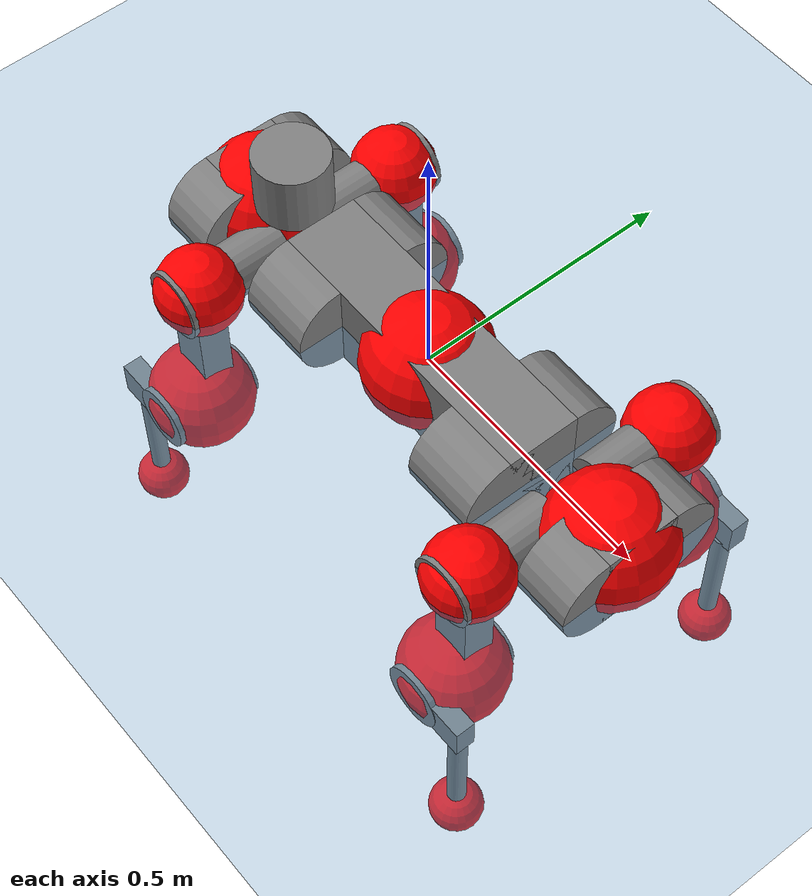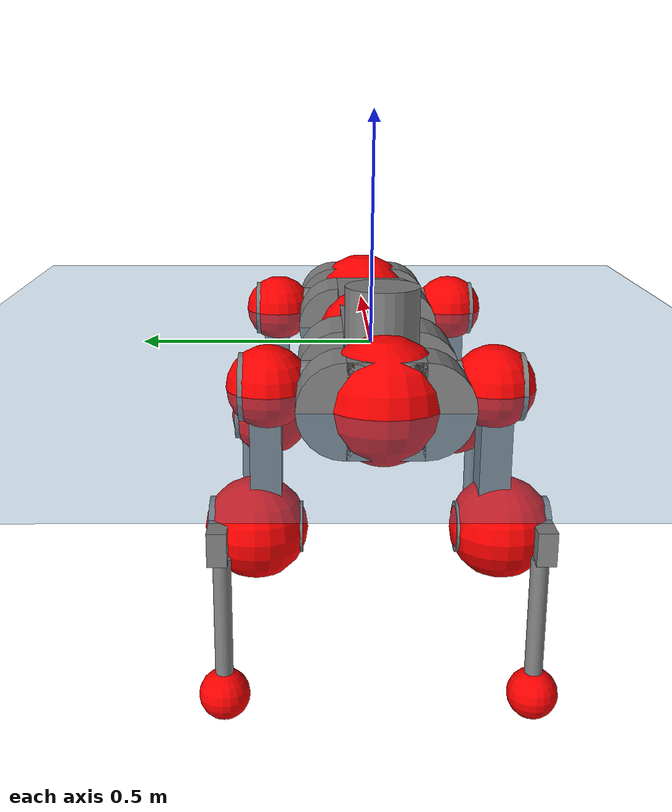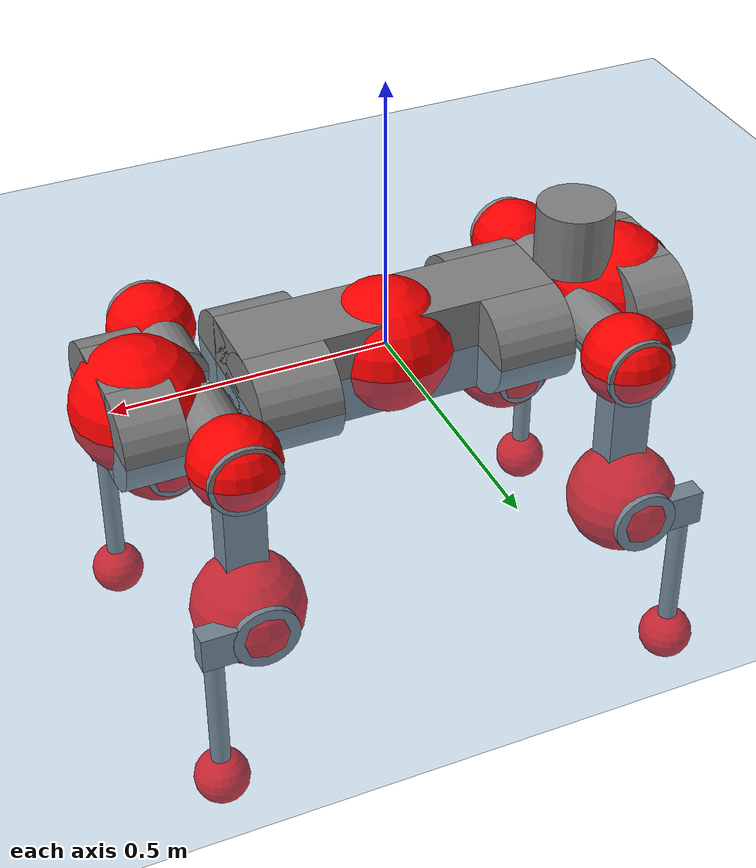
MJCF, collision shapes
<mujoco model="anymal_c">
  <compiler angle="radian" assetdir="assets" balanceinertia="true" inertiafromgeom="false"/>

  <option timestep="0.005" density="1.2" viscosity="2e-05"/>

  <size nkey="1"/>

  <visual>
    <quality shadowsize="8192"/>
    <map shadowclip="0.5"/>
  </visual>

  <default>
    <default class="/">
      <material specular="0" shininess="0.25"/>
      <geom contype="0" conaffinity="0" group="1" solref="-1000 -80"/>
      <site size="0.01 0.005 0.005" group="5"/>
      <general forcelimited="true" forcerange="-80 80" biastype="affine" gainprm="80" biasprm="0 -80 -2"/>
      <default class="anymal_c">
        <joint armature="0.01" damping="0.01" frictionloss="0.1"/>
        <default class="visual">
          <geom type="mesh" group="2"/>
          <default class="visual_zflip"/>
        </default>
        <default class="collision">
          <geom type="cylinder" group="3"/>
          <default class="foot">
            <geom size="0.03 0 0" type="sphere" condim="6" priority="1" friction="0.8 0.02 0.01" solimp="0.015 1 0.03"/>
          </default>
        </default>
      </default>
      <default class="reward_collision_sphere">
        <geom group="5" rgba="1 0 0 1"/>
      </default>
    </default>
  </default>

  <asset>
    <texture type="skybox" colorspace="auto" name="//unnamed_texture_0" builtin="gradient" rgb1="0.95 0.95 0.95" rgb2="0.95 0.95 0.95" width="100" height="600"/>
    <texture type="2d" colorspace="auto" name="texplane" builtin="checker" rgb1="0.345 0.575 0.748" rgb2="0.345 0.575 0.748" markrgb="1 1 1" width="512" height="512"/>
    <texture type="2d" colorspace="linear" name="base" file="base.png"/>
    <texture type="2d" colorspace="linear" name="top_shell" file="top_shell.png"/>
    <texture type="2d" colorspace="linear" name="bottom_shell" file="bottom_shell.png"/>
    <texture type="2d" colorspace="linear" name="remote" file="remote.png"/>
    <texture type="2d" colorspace="linear" name="hatch" file="hatch.png"/>
    <texture type="2d" colorspace="linear" name="handle" file="handle.png"/>
    <texture type="2d" colorspace="linear" name="face" file="face.png"/>
    <texture type="2d" colorspace="linear" name="battery" file="battery.png"/>
    <texture type="2d" colorspace="linear" name="lidar_cage" file="lidar_cage.png"/>
    <texture type="2d" colorspace="linear" name="depth_camera" file="depth_camera.png"/>
    <texture type="2d" colorspace="linear" name="wide_angle_camera" file="wide_angle_camera.png"/>
    <texture type="2d" colorspace="linear" name="lidar" file="lidar.png"/>
    <texture type="2d" colorspace="linear" name="drive" file="drive.png"/>
    <texture type="2d" colorspace="linear" name="hip_l" file="hip_l.png"/>
    <texture type="2d" colorspace="linear" name="shank_l" file="shank_l.png"/>
    <texture type="2d" colorspace="linear" name="foot" file="foot.png"/>
    <texture type="2d" colorspace="linear" name="thigh" file="thigh.png"/>
    <texture type="2d" colorspace="linear" name="shank_r" file="shank_r.png"/>
    <texture type="2d" colorspace="linear" name="hip_r" file="hip_r.png"/>
    <material name="MatPlane" class="/" texture="texplane" texuniform="true" texrepeat="2 2" specular="0.9" shininess="0.5"/>
    <material name="black_plastic" class="/" rgba="0.007 0.007 0.007 1"/>
    <material name="green" class="/" rgba="0.052 0.178 0.033 1"/>
    <material name="red" class="/" rgba="0.178 0.006 0.005 1"/>
    <material name="yellow" class="/" rgba="0.178 0.119 0.006 1"/>
    <material name="lwl" class="/" rgba="0.8 0.8 0.8 1"/>
    <material name="base" class="/" texture="base"/>
    <material name="top_shell" class="/" texture="top_shell"/>
    <material name="bottom_shell" class="/" texture="bottom_shell"/>
    <material name="hip_l" class="/" texture="hip_l"/>
    <material name="thigh" class="/" texture="thigh"/>
    <material name="shank_l" class="/" texture="shank_l"/>
    <material name="foot" class="/" texture="foot"/>
    <material name="hip_r" class="/" texture="hip_r"/>
    <material name="shank" class="/" texture="shank_r"/>
    <material name="hatch" class="/" texture="hatch"/>
    <material name="remote" class="/" texture="remote"/>
    <material name="handle" class="/" texture="handle"/>
    <material name="face" class="/" texture="face"/>
    <material name="depth_camera" class="/" texture="depth_camera"/>
    <material name="wide_angle_camera" class="/" texture="wide_angle_camera"/>
    <material name="battery" class="/" texture="battery"/>
    <material name="lidar_cage" class="/" texture="lidar_cage"/>
    <material name="lidar" class="/" texture="lidar"/>
    <material name="drive" class="/" texture="drive"/>
    <mesh name="base_0" class="/" file="base_0.obj"/>
    <mesh name="base_1" class="/" file="base_1.obj"/>
    <mesh name="base_2" class="/" file="base_2.obj"/>
    <mesh name="base_3" class="/" file="base_3.obj"/>
    <mesh name="base_4" class="/" file="base_4.obj"/>
    <mesh name="base_5" class="/" file="base_5.obj"/>
    <mesh name="top_shell" class="/" file="top_shell.obj"/>
    <mesh name="bottom_shell" class="/" file="bottom_shell.obj"/>
    <mesh name="remote" class="/" file="remote.obj"/>
    <mesh name="handle" class="/" file="handle.obj"/>
    <mesh name="face" class="/" file="face.obj"/>
    <mesh name="wide_angle_camera" class="/" file="wide_angle_camera.obj"/>
    <mesh name="depth_camera" class="/" file="depth_camera.obj"/>
    <mesh name="battery" class="/" file="battery.obj"/>
    <mesh name="lidar_cage" class="/" file="lidar_cage.obj"/>
    <mesh name="lidar" class="/" file="lidar.obj"/>
    <mesh name="drive" class="/" file="drive.obj"/>
    <mesh name="hip_l" class="/" file="hip_l.obj"/>
    <mesh name="thigh" class="/" file="thigh.obj"/>
    <mesh name="shank_l" class="/" file="shank_l.obj"/>
    <mesh name="foot" class="/" file="foot.obj"/>
    <mesh name="hip_r" class="/" file="hip_r.obj"/>
    <mesh name="hatch" class="/" file="hatch.obj"/>
    <mesh name="shank_r" class="/" file="shank_r.obj"/>
  </asset>

  <worldbody>
    <geom name="floor" class="/" size="100 100 0.125" type="plane" group="0" material="MatPlane"/>
    <light name="toplight_shadow" class="/" pos="0 0 5" dir="0.0990148 0.0990148 -0.990148" type="directional" ambient="0.04 0.04 0.04" diffuse="0.55 0.55 0.55" specular="0.12 0.12 0.12"/>
    <light name="toplight_fill" class="/" pos="0 0 5" dir="0.0990148 0.0990148 -0.990148" type="directional" castshadow="false" ambient="0.04 0.04 0.04" diffuse="0.3 0.3 0.3" specular="0.08 0.08 0.08"/>
    <body name="trunk" childclass="anymal_c">
      <inertial pos="0.0025 0 0.0502071" quat="0.5 0.5 0.5 0.5" mass="19.2035" diaginertia="0.639559 0.624031 0.217374"/>
      <joint name="//unnamed_joint_0" type="free" armature="0" damping="0" frictionloss="0"/>
      <geom name="//unnamed_geom_1" class="visual" material="green" mesh="base_0"/>
      <geom name="//unnamed_geom_2" class="visual" material="yellow" mesh="base_1"/>
      <geom name="//unnamed_geom_3" class="visual" material="red" mesh="base_2"/>
      <geom name="//unnamed_geom_4" class="visual" material="black_plastic" mesh="base_3"/>
      <geom name="//unnamed_geom_5" class="visual" material="lwl" mesh="base_4"/>
      <geom name="//unnamed_geom_6" class="visual" material="base" mesh="base_5"/>
      <geom name="trunk_1" class="collision" size="0.29 0.07 0.09" type="box"/>
      <geom name="trunk_2" class="collision" size="0.09 0.0725" pos="0.2175 0.07 0" quat="0.707107 0 0.707107 0"/>
      <geom name="trunk_3" class="collision" size="0.09 0.0725" pos="-0.2175 0.07 0" quat="0.707107 0 0.707107 0"/>
      <geom name="trunk_4" class="collision" size="0.09 0.0725" pos="0.2175 -0.07 0" quat="0.707107 0 0.707107 0"/>
      <geom name="trunk_5" class="collision" size="0.09 0.0725" pos="-0.2175 -0.07 0" quat="0.707107 0 0.707107 0"/>
      <geom name="//unnamed_geom_12" class="visual" material="top_shell" mesh="top_shell"/>
      <geom name="//unnamed_geom_13" class="visual" material="bottom_shell" mesh="bottom_shell"/>
      <geom name="//unnamed_geom_14" class="visual" material="remote" mesh="remote"/>
      <geom name="//unnamed_geom_15" class="visual" material="handle" mesh="handle"/>
      <geom name="//unnamed_geom_16" class="visual" pos="0.4145 0 0" quat="1 0 0 0" material="face" mesh="face"/>
      <geom name="trunk_6" class="collision" size="0.055 0.07 0.09" pos="0.4695 0 0" type="box"/>
      <geom name="//unnamed_geom_18" class="collision" size="0.09 0.055" pos="0.4695 0.07 0" quat="0.707107 0 0.707107 0"/>
      <geom name="//unnamed_geom_19" class="collision" size="0.09 0.055" pos="0.4695 -0.07 0" quat="0.707107 0 0.707107 0"/>
      <geom name="//unnamed_geom_20" class="visual" pos="0.46165 0 -0.0292" quat="0.965926 0 0.258819 0" material="depth_camera" mesh="depth_camera"/>
      <geom name="//unnamed_geom_21" class="visual" pos="0.513 0 0.01497" material="wide_angle_camera" mesh="wide_angle_camera"/>
      <geom name="//unnamed_geom_22" class="visual_zflip" pos="-0.4145 0 0" quat="0 0 0 1" material="face" mesh="face"/>
      <geom name="trunk_7" class="collision" size="0.055 0.07 0.09" pos="-0.4695 0 0" quat="0 0 0 1" type="box"/>
      <geom name="//unnamed_geom_24" class="collision" size="0.09 0.055" pos="-0.4695 -0.07 0" quat="0 -0.707107 0 0.707107"/>
      <geom name="//unnamed_geom_25" class="collision" size="0.09 0.055" pos="-0.4695 0.07 0" quat="0 -0.707107 0 0.707107"/>
      <geom name="//unnamed_geom_26" class="visual" pos="-0.46165 0 -0.0292" quat="0 -0.258819 0 0.965926" material="depth_camera" mesh="depth_camera"/>
      <geom name="//unnamed_geom_27" class="visual_zflip" pos="-0.513 0 0.01497" quat="0 0 0 1" material="wide_angle_camera" mesh="wide_angle_camera"/>
      <geom name="//unnamed_geom_28" class="visual" material="battery" mesh="battery"/>
      <geom name="//unnamed_geom_29" class="visual" pos="0 0.07646 0.02905" quat="0.683013 -0.183013 0.183013 0.683013" material="depth_camera" mesh="depth_camera"/>
      <geom name="//unnamed_geom_30" class="visual" pos="0 -0.07646 0.02905" quat="0.683013 0.183013 0.183013 -0.683013" material="depth_camera" mesh="depth_camera"/>
      <geom name="//unnamed_geom_31" class="visual" pos="-0.364 0 0.0735" quat="1 0 0 0" material="lidar_cage" mesh="lidar_cage"/>
      <geom name="trunk_8" class="collision" size="0.07 0.06" pos="-0.364 0 0.1335"/>
      <geom name="//unnamed_geom_33" class="visual" pos="-0.364 0 0.1422" quat="0.707107 0 0 -0.707107" material="lidar" mesh="lidar"/>
      <geom name="//unnamed_geom_34" class="visual" pos="0.2999 0.104 0" quat="0.258819 0.965926 0 0" material="drive" mesh="drive"/>
      <geom name="//unnamed_geom_35" class="visual" pos="0.2999 -0.104 0" quat="0.258819 -0.965926 0 0" material="drive" mesh="drive"/>
      <geom name="//unnamed_geom_36" class="visual" pos="-0.2999 0.104 0" quat="0 0 0.965926 -0.258819" material="drive" mesh="drive"/>
      <geom name="//unnamed_geom_37" class="visual" pos="-0.2999 -0.104 0" quat="0 0 -0.965926 -0.258819" material="drive" mesh="drive"/>
      <geom name="//unnamed_geom_38" class="visual" pos="0.116 0 0.073" quat="1 0 0 0" material="hatch" mesh="hatch"/>
      <geom name="//unnamed_geom_39" class="reward_collision_sphere" size="0.12"/>
      <geom name="//unnamed_geom_40" class="reward_collision_sphere" size="0.12" pos="0.45 0 0"/>
      <geom name="//unnamed_geom_41" class="reward_collision_sphere" size="0.12" pos="-0.45 0 0"/>
      <site name="imu" pos="0.2488 0.00835 0.04628"/>
      <camera name="track" pos="0 -2 0" quat="0.707107 0.707107 0 0" mode="trackcom"/>
      <camera name="ego_camera" pos="0.45 0 -0.04" quat="-0.5 -0.5 0.5 0.5"/>
      <body name="LF_HIP" pos="0.2999 0.104 0" quat="0.258819 0.965926 0 0">
        <inertial pos="0.0566606 -0.015294 -0.00829784" quat="-0.127978 0.709783 -0.135278 0.679359" mass="2.781" diaginertia="0.00585729 0.00491868 0.00329081"/>
        <joint name="LF_HAA" pos="0 0 0" axis="1 0 0" range="-0.72 0.49"/>
        <geom name="//unnamed_geom_42" class="visual" pos="0 0 0" quat="0.258819 -0.965926 0 0" material="hip_l" mesh="hip_l"/>
        <geom name="//unnamed_geom_43" class="visual" pos="0.0599 -0.0725816 -0.041905" quat="0.183013 -0.683013 0.683013 0.183013" material="drive" mesh="drive"/>
        <geom name="//unnamed_geom_44" class="collision" size="0.05 0.07" pos="0.0599 -0.0119598 -0.006905" quat="-0.353553 -0.612372 0.612372 -0.353553"/>
        <body name="LF_THIGH" pos="0.0599 -0.0725816 -0.041905" quat="0.183013 -0.683013 0.683013 0.183013">
          <inertial pos="0.0308147 4.64995e-05 -0.245696" quat="0.993166 -0.00515309 -0.0806592 0.0841972" mass="3.071" diaginertia="0.03025 0.0298943 0.00418465"/>
          <joint name="LF_HFE" pos="0 0 0" axis="1 0 0" range="-3.14 3.14"/>
          <geom name="//unnamed_geom_45" class="visual" pos="0 0 0" quat="0.707107 0 0 -0.707107" material="thigh" mesh="thigh"/>
          <geom name="//unnamed_geom_46" class="collision" size="0.065 0.04" pos="0.04 0 0" quat="0.5 0.5 -0.5 -0.5"/>
          <geom name="//unnamed_geom_47" class="collision" size="0.0375 0.03 0.141314" pos="0.03 0 -0.141314" quat="0.707107 0 0 -0.707107" type="box"/>
          <geom name="//unnamed_geom_48" class="visual" pos="0.1003 0 -0.285" quat="1 0 0 0" material="drive" mesh="drive"/>
          <geom name="//unnamed_geom_49" class="collision" size="0.05 0.07" pos="0.0303 0 -0.285" quat="0.707107 0 0.707107 0"/>
          <geom name="//unnamed_geom_50" class="reward_collision_sphere" size="0.08" pos="0.025 0 0"/>
          <body name="LF_SHANK" pos="0.1003 0 -0.285">
            <inertial pos="0.005462 -0.0612528 -0.0806598" quat="0.992934 -0.115904 -0.00105487 -0.0254421" mass="0.58842" diaginertia="0.0101637 0.00923838 0.00111927"/>
            <joint name="LF_KFE" pos="0 0 0" axis="1 0 0" range="-3.14 3.14"/>
            <geom name="//unnamed_geom_51" class="visual" quat="0.707107 0 0 -0.707107" material="shank_l" mesh="shank_l"/>
            <geom name="LF_kfe_act" class="collision" size="0.06 0.02" pos="0.02 0 0" quat="0.5 0.5 -0.5 -0.5"/>
            <geom name="//unnamed_geom_53" class="collision" size="0.057499 0.03375 0.019" pos="0.02 -0.057499 0" quat="0.5 0.5 -0.5 -0.5" type="box"/>
            <geom name="//unnamed_geom_54" class="visual" pos="0.01305 -0.08795 -0.33797" quat="0.382683 0 0 -0.92388" material="foot" mesh="foot"/>
            <geom name="LF_calf" class="collision" size="0.0175 0.141252" pos="0.01305 -0.08795 -0.168985" quat="0.707107 0 0 -0.707107"/>
            <geom name="LF_foot" class="foot" pos="0.01305 -0.08795 -0.31547" quat="0.707107 0 0 -0.707107"/>
            <geom name="//unnamed_geom_57" class="reward_collision_sphere" size="0.1" pos="-0.05 0 0"/>
            <geom name="//unnamed_geom_58" class="reward_collision_sphere" size="0.05" pos="0.01305 -0.08795 -0.31547"/>
            <site name="LF_foot" class="foot" pos="0.01305 -0.08795 -0.31547" quat="0.707107 0 0 -0.707107"/>
          </body>
        </body>
      </body>
      <body name="RF_HIP" pos="0.2999 -0.104 0" quat="0.258819 -0.965926 0 0">
        <inertial pos="0.0567633 0.015294 -0.00829784" quat="0.13524 0.679072 0.127985 0.710065" mass="2.781" diaginertia="0.00585928 0.0049205 0.00329064"/>
        <joint name="RF_HAA" pos="0 0 0" axis="1 0 0" range="-0.49 0.72"/>
        <geom name="//unnamed_geom_59" class="visual" pos="0 0 0" quat="0.258819 0.965926 0 0" material="hip_r" mesh="hip_r"/>
        <geom name="//unnamed_geom_60" class="visual" pos="0.0599 0.0725816 -0.041905" quat="0.183013 0.683013 0.683013 -0.183013" material="drive" mesh="drive"/>
        <geom name="//unnamed_geom_61" class="collision" size="0.05 0.07" pos="0.0599 0.0119598 -0.006905" quat="-0.353553 0.612372 0.612372 0.353553"/>
        <body name="RF_THIGH" pos="0.0599 0.0725816 -0.041905" quat="0.183013 0.683013 0.683013 -0.183013">
          <inertial pos="0.0308147 4.64995e-05 -0.245696" quat="0.992775 -0.00512735 -0.0806685 0.0886811" mass="3.071" diaginertia="0.0302511 0.0298933 0.0041845"/>
          <joint name="RF_HFE" pos="0 0 0" axis="1 0 0" range="-3.14 3.14"/>
          <geom name="//unnamed_geom_62" class="visual" pos="0 0 0" quat="0.707107 0 0 -0.707107" material="thigh" mesh="thigh"/>
          <geom name="//unnamed_geom_63" class="collision" size="0.065 0.04" pos="0.04 0 0" quat="0.5 0.5 0.5 0.5"/>
          <geom name="//unnamed_geom_64" class="collision" size="0.0375 0.03 0.141314" pos="0.03 0 -0.141314" quat="0.707107 0 0 0.707107" type="box"/>
          <geom name="//unnamed_geom_65" class="visual" pos="0.1003 0 -0.285" quat="1 0 0 0" material="drive" mesh="drive"/>
          <geom name="//unnamed_geom_66" class="collision" size="0.05 0.07" pos="0.0303 0 -0.285" quat="0.707107 0 0.707107 0"/>
          <geom name="//unnamed_geom_67" class="reward_collision_sphere" size="0.08" pos="0.025 0 0"/>
          <body name="RF_SHANK" pos="0.1003 0 -0.285">
            <inertial pos="0.005462 0.0612528 -0.0806598" quat="0.992934 0.115904 -0.00105487 0.0254421" mass="0.58842" diaginertia="0.0101637 0.00923838 0.00111927"/>
            <joint name="RF_KFE" pos="0 0 0" axis="1 0 0" range="-3.14 3.14"/>
            <geom name="//unnamed_geom_68" class="visual" quat="0.707107 0 0 0.707107" material="shank" mesh="shank_r"/>
            <geom name="RF_kfe_act" class="collision" size="0.06 0.02" pos="0.02 0 0" quat="0.5 0.5 0.5 0.5"/>
            <geom name="//unnamed_geom_70" class="collision" size="0.057499 0.03375 0.019" pos="0.02 0.057499 0" quat="0.5 0.5 0.5 0.5" type="box"/>
            <geom name="//unnamed_geom_71" class="visual" pos="0.01305 0.08795 -0.33797" quat="0.382683 0 0 0.92388" material="foot" mesh="foot"/>
            <geom name="RF_calf" class="collision" size="0.0175 0.141252" pos="0.01305 0.08795 -0.168985" quat="0.707107 0 0 0.707107"/>
            <geom name="RF_foot" class="foot" pos="0.01305 0.08795 -0.31547" quat="0.707107 0 0 0.707107"/>
            <geom name="//unnamed_geom_74" class="reward_collision_sphere" size="0.1" pos="-0.05 0 0"/>
            <geom name="//unnamed_geom_75" class="reward_collision_sphere" size="0.05" pos="0.01305 0.08795 -0.31547"/>
            <site name="RF_foot" class="foot" pos="0.01305 0.08795 -0.31547" quat="0.707107 0 0 0.707107"/>
          </body>
        </body>
      </body>
      <body name="LH_HIP" pos="-0.2999 0.104 0" quat="0 0 0.965926 -0.258819">
        <inertial pos="0.0567633 0.015294 -0.00829784" quat="0.13524 0.679072 0.127985 0.710065" mass="2.781" diaginertia="0.00585928 0.0049205 0.00329064"/>
        <joint name="LH_HAA" pos="0 0 0" axis="1 0 0" range="-0.49 0.72"/>
        <geom name="//unnamed_geom_76" class="visual" pos="0 0 0" quat="-0.258819 -0.965926 0 0" material="hip_r" mesh="hip_r"/>
        <geom name="//unnamed_geom_77" class="visual" pos="0.0599 0.0725816 -0.041905" quat="0.183013 0.683013 0.683013 -0.183013" material="drive" mesh="drive"/>
        <geom name="//unnamed_geom_78" class="collision" size="0.05 0.07" pos="0.0599 0.0119598 -0.006905" quat="-0.353553 0.612372 0.612372 0.353553"/>
        <body name="LH_THIGH" pos="0.0599 0.0725816 -0.041905" quat="0.183013 0.683013 0.683013 -0.183013">
          <inertial pos="0.0308147 4.64995e-05 -0.245696" quat="0.992775 -0.00512735 -0.0806685 0.0886811" mass="3.071" diaginertia="0.0302511 0.0298933 0.0041845"/>
          <joint name="LH_HFE" pos="0 0 0" axis="1 0 0" range="-3.14 3.14"/>
          <geom name="//unnamed_geom_79" class="visual" pos="0 0 0" quat="0.707107 0 0 -0.707107" material="thigh" mesh="thigh"/>
          <geom name="//unnamed_geom_80" class="collision" size="0.065 0.04" pos="0.04 0 0" quat="0.5 0.5 -0.5 -0.5"/>
          <geom name="//unnamed_geom_81" class="collision" size="0.0375 0.03 0.141314" pos="0.03 0 -0.141314" quat="0.707107 0 0 -0.707107" type="box"/>
          <geom name="//unnamed_geom_82" class="visual" pos="0.1003 0 -0.285" quat="1 0 0 0" material="drive" mesh="drive"/>
          <geom name="//unnamed_geom_83" class="collision" size="0.05 0.07" pos="0.0303 0 -0.285" quat="0.707107 0 0.707107 0"/>
          <geom name="//unnamed_geom_84" class="reward_collision_sphere" size="0.08" pos="0.025 0 0"/>
          <body name="LH_SHANK" pos="0.1003 0 -0.285">
            <inertial pos="0.005462 0.0612528 -0.0806598" quat="0.992934 0.115904 -0.00105487 0.0254421" mass="0.58842" diaginertia="0.0101637 0.00923838 0.00111927"/>
            <joint name="LH_KFE" pos="0 0 0" axis="1 0 0" range="-3.14 3.14"/>
            <geom name="//unnamed_geom_85" class="visual" quat="-0.707107 0 0 -0.707107" material="shank" mesh="shank_r"/>
            <geom name="LH_kfe_act" class="collision" size="0.06 0.02" pos="0.02 0 0" quat="0.5 0.5 -0.5 -0.5"/>
            <geom name="//unnamed_geom_87" class="collision" size="0.057499 0.03375 0.019" pos="0.02 0.057499 0" quat="0.5 0.5 -0.5 -0.5" type="box"/>
            <geom name="//unnamed_geom_88" class="visual" pos="0.01305 0.08795 -0.33797" quat="-0.382683 0 0 -0.92388" material="foot" mesh="foot"/>
            <geom name="LH_calf" class="collision" size="0.0175 0.141252" pos="0.01305 0.08795 -0.168985" quat="0.707107 0 0 -0.707107"/>
            <geom name="LH_foot" class="foot" pos="0.01305 0.08795 -0.31547" quat="0.707107 0 0 -0.707107"/>
            <geom name="//unnamed_geom_91" class="reward_collision_sphere" size="0.1" pos="-0.05 0 0"/>
            <geom name="//unnamed_geom_92" class="reward_collision_sphere" size="0.05" pos="0.01305 0.08795 -0.31547"/>
            <site name="LH_foot" class="foot" pos="0.01305 0.08795 -0.31547" quat="0.707107 0 0 -0.707107"/>
          </body>
        </body>
      </body>
      <body name="RH_HIP" pos="-0.2999 -0.104 0" quat="0 0 -0.965926 -0.258819">
        <inertial pos="0.0566606 -0.015294 -0.00829784" quat="-0.127978 0.709783 -0.135278 0.679359" mass="2.781" diaginertia="0.00585729 0.00491868 0.00329081"/>
        <joint name="RH_HAA" pos="0 0 0" axis="1 0 0" range="-0.72 0.49"/>
        <geom name="//unnamed_geom_93" class="visual" pos="0 0 0" quat="-0.258819 0.965926 0 0" material="hip_l" mesh="hip_l"/>
        <geom name="//unnamed_geom_94" class="visual" pos="0.0599 -0.0725816 -0.041905" quat="-0.183013 0.683013 -0.683013 -0.183013" material="drive" mesh="drive"/>
        <geom name="//unnamed_geom_95" class="collision" size="0.05 0.07" pos="0.0599 -0.0119598 -0.006905" quat="0.353553 0.612372 -0.612372 0.353553"/>
        <body name="RH_THIGH" pos="0.0599 -0.0725816 -0.041905" quat="-0.183013 0.683013 -0.683013 -0.183013">
          <inertial pos="0.0308147 4.64995e-05 -0.245696" quat="0.993166 -0.00515309 -0.0806592 0.0841972" mass="3.071" diaginertia="0.03025 0.0298943 0.00418465"/>
          <joint name="RH_HFE" pos="0 0 0" axis="1 0 0" range="-3.14 3.14"/>
          <geom name="//unnamed_geom_96" class="visual" pos="0 0 0" quat="0.707107 0 0 -0.707107" material="thigh" mesh="thigh"/>
          <geom name="//unnamed_geom_97" class="collision" size="0.065 0.04" pos="0.04 0 0" quat="0.5 0.5 0.5 0.5"/>
          <geom name="//unnamed_geom_98" class="collision" size="0.0375 0.03 0.141314" pos="0.03 0 -0.141314" quat="0.707107 0 0 0.707107" type="box"/>
          <geom name="//unnamed_geom_99" class="visual" pos="0.1003 0 -0.285" quat="1 0 0 0" material="drive" mesh="drive"/>
          <geom name="//unnamed_geom_100" class="collision" size="0.05 0.07" pos="0.0303 0 -0.285" quat="0.707107 0 0.707107 0"/>
          <geom name="//unnamed_geom_101" class="reward_collision_sphere" size="0.08" pos="0.025 0 0"/>
          <body name="RH_SHANK" pos="0.1003 0 -0.285">
            <inertial pos="0.005462 -0.0612528 -0.0806598" quat="0.992934 -0.115904 -0.00105487 -0.0254421" mass="0.58842" diaginertia="0.0101637 0.00923838 0.00111927"/>
            <joint name="RH_KFE" pos="0 0 0" axis="1 0 0" range="-3.14 3.14"/>
            <geom name="//unnamed_geom_102" class="visual" quat="0.707107 0 0 -0.707107" material="shank_l" mesh="shank_l"/>
            <geom name="RH_kfe_act" class="collision" size="0.06 0.02" pos="0.02 0 0" quat="0.5 0.5 0.5 0.5"/>
            <geom name="//unnamed_geom_104" class="collision" size="0.057499 0.03375 0.019" pos="0.02 -0.057499 0" quat="0.5 0.5 0.5 0.5" type="box"/>
            <geom name="//unnamed_geom_105" class="visual" pos="0.01305 -0.08795 -0.33797" quat="0.382683 0 0 -0.92388" material="foot" mesh="foot"/>
            <geom name="RH_calf" class="collision" size="0.0175 0.141252" pos="0.01305 -0.08795 -0.168985" quat="0.707107 0 0 0.707107"/>
            <geom name="RH_foot" class="foot" pos="0.01305 -0.08795 -0.31547" quat="0.707107 0 0 0.707107"/>
            <geom name="//unnamed_geom_108" class="reward_collision_sphere" size="0.1" pos="-0.05 0 0"/>
            <geom name="//unnamed_geom_109" class="reward_collision_sphere" size="0.05" pos="0.01305 -0.08795 -0.31547"/>
            <site name="RH_foot" class="foot" pos="0.01305 -0.08795 -0.31547" quat="0.707107 0 0 0.707107"/>
          </body>
        </body>
      </body>
    </body>
  </worldbody>

  <contact>
    <pair class="/" geom1="floor" geom2="LF_foot" name="//unnamed_contact_0"/>
    <pair class="/" geom1="floor" geom2="RF_foot" name="//unnamed_contact_1"/>
    <pair class="/" geom1="floor" geom2="LH_foot" name="//unnamed_contact_2"/>
    <pair class="/" geom1="floor" geom2="RH_foot" name="//unnamed_contact_3"/>
  </contact>

  <actuator>
    <general name="LF_HAA" class="/" joint="LF_HAA"/>
    <general name="LF_HFE" class="/" joint="LF_HFE"/>
    <general name="LF_KFE" class="/" joint="LF_KFE"/>
    <general name="RF_HAA" class="/" joint="RF_HAA"/>
    <general name="RF_HFE" class="/" joint="RF_HFE"/>
    <general name="RF_KFE" class="/" joint="RF_KFE"/>
    <general name="LH_HAA" class="/" joint="LH_HAA"/>
    <general name="LH_HFE" class="/" joint="LH_HFE"/>
    <general name="LH_KFE" class="/" joint="LH_KFE"/>
    <general name="RH_HAA" class="/" joint="RH_HAA"/>
    <general name="RH_HFE" class="/" joint="RH_HFE"/>
    <general name="RH_KFE" class="/" joint="RH_KFE"/>
  </actuator>

  <sensor>
    <gyro site="imu" name="imu_angular_velocity"/>
    <velocimeter site="imu" name="imu_linear_velocity"/>
    <framelinvel objtype="site" objname="LF_foot" name="LF_foot_global_linear_velocity"/>
    <framelinvel objtype="site" objname="RF_foot" name="RF_foot_global_linear_velocity"/>
    <framelinvel objtype="site" objname="LH_foot" name="LH_foot_global_linear_velocity"/>
    <framelinvel objtype="site" objname="RH_foot" name="RH_foot_global_linear_velocity"/>
  </sensor>

  <keyframe>
    <key name="home" qpos="0 0 0.55 1 0 0 0 0 0.4 -0.8 0 -0.4 0.8 0 -0.4 0.8 0 0.4 -0.8"/>
  </keyframe>
</mujoco>
